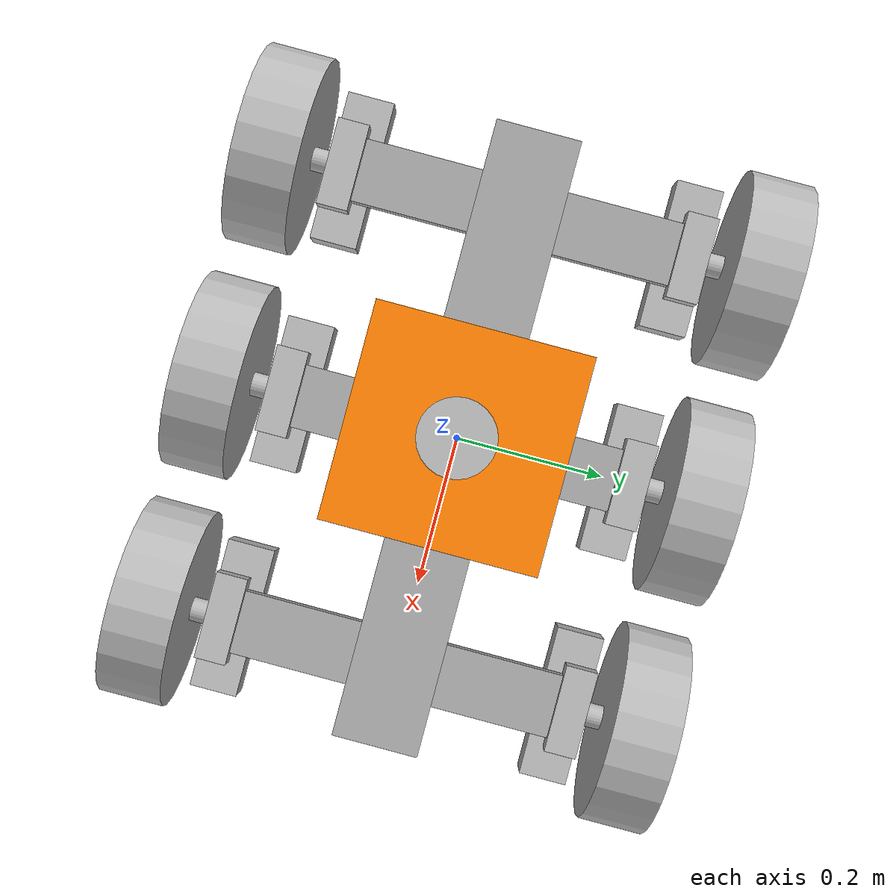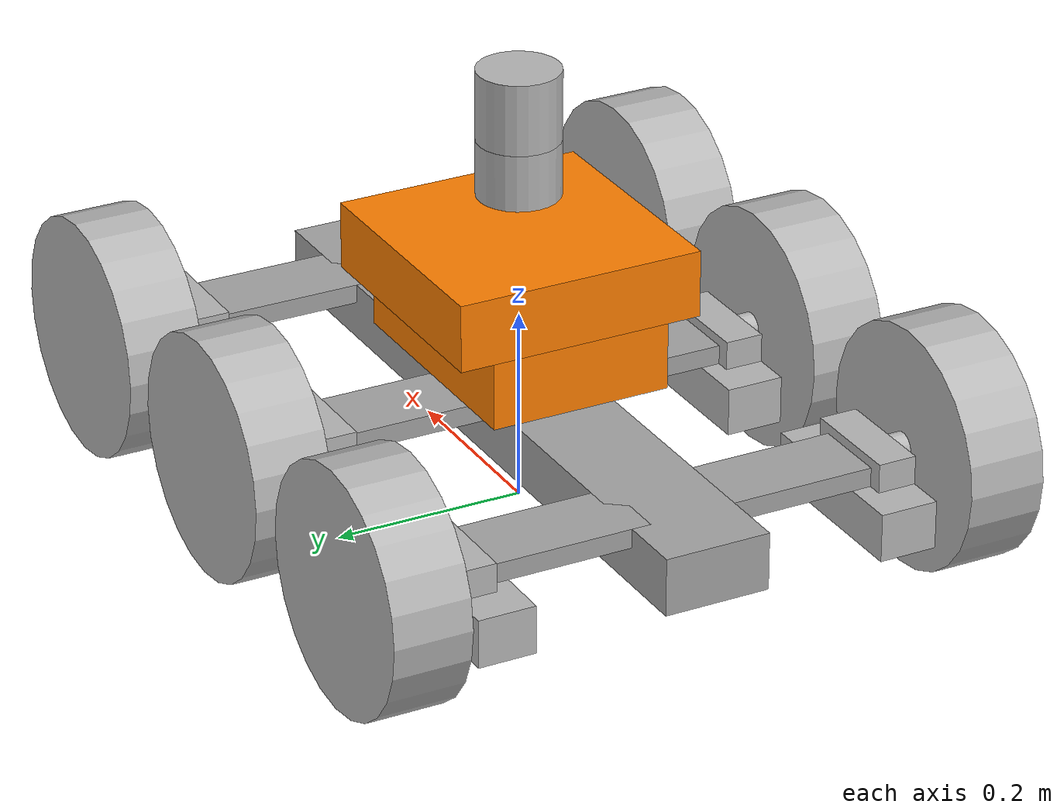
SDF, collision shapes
<?xml version='1.0'?>
 <sdf version='1.7'>
  <model name="siar">

  <odom_publish_frequency>1</odom_publish_frequency>
  <topic>cmd_vel</topic>

<!-- DEFINITION OF LINKS -->

<!-- 1. Definition of Chassis-->

    <link name='chassis'>
      <plugin filename="ignition-gazebo-imu-system"
        name="ignition::gazebo::systems::Imu">
      </plugin>
      <pose>0 0.0 .105 0 0 0</pose>
      <inertial>
        <mass>4.0</mass>
        <inertia>
          <ixx>0.005233</ixx>
          <ixy>0</ixy>
          <ixz>0</ixz>
          <iyy>0.2124</iyy>
          <iyz>0</iyz>
          <izz>0.2152</izz>
        </inertia>
      </inertial>
      <collision name='collision'>
        <geometry>
          <box>
            <size>.796 .11 .06</size>
          </box>
        </geometry>
      </collision>
      <visual name='visual'>
        <geometry>
          <box>
            <size>.796 .11 .06</size>
          </box>
        </geometry>
        <material>
          <ambient>0.7 0.7 0.7 1</ambient>      <!-- Clear gray-->
          <diffuse>0.65 0.65 0.65 1</diffuse>      <!-- Clear gray -->
          <specular>0.6 0.6 0.6 1</specular>    <!-- Clear gray -->
          <emissive>0 0 0 1</emissive>          <!-- Does not emit light -->
        </material>
      </visual>
    </link>

<!-- 2. Definition of Arms -->
    <link name='arm_right_1'>
      <pose>.0 .12 .125 0 0 0</pose>
      <inertial>
        <mass>1.0</mass>
        <inertia>
          <ixx>0.00244</ixx>
          <ixy>0</ixy>
          <ixz>0</ixz>
          <iyy>0.00057</iyy>
          <iyz>0</iyz>
          <izz>0.00294</izz>
        </inertia>
      </inertial>
      <collision name='collision'>
        <geometry>
          <box>
            <size>.08 .17 .02</size>
          </box>
        </geometry>
      </collision>
      <visual name='visual'>
        <geometry>
          <box>
            <size>.08 .17 .02</size>
          </box>
        </geometry>
        <material>
          <ambient>0.7 0.7 0.7 1</ambient>      <!-- Clear gray-->
          <diffuse>0.65 0.65 0.65 1</diffuse>      <!-- Clear gray -->
          <specular>0.6 0.6 0.6 1</specular>    <!-- Clear gray -->
          <emissive>0 0 0 1</emissive>          <!-- Does not emit light -->
        </material>
      </visual>
     </link>

     <link name='arm_right_2'>
      <pose>.292 .12 .125 0 0 0</pose>
      <inertial>
        <mass>1.0</mass>
        <inertia>
          <ixx>0.00244</ixx>
          <ixy>0</ixy>
          <ixz>0</ixz>
          <iyy>0.00057</iyy>
          <iyz>0</iyz>
          <izz>0.00294</izz>
        </inertia>
      </inertial>
      <collision name='collision'>
        <geometry>
          <box>
            <size>.08 .17 .02</size>
          </box>
        </geometry>
      </collision>
      <visual name='visual'>
        <geometry>
          <box>
            <size>.08 .17 .02</size>
          </box>
        </geometry>
        <material>
          <ambient>0.7 0.7 0.7 1</ambient>      <!-- Clear gray-->
          <diffuse>0.65 0.65 0.65 1</diffuse>      <!-- Clear gray -->
          <specular>0.6 0.6 0.6 1</specular>    <!-- Clear gray -->
          <emissive>0 0 0 1</emissive>          <!-- Does not emit light -->
        </material>
      </visual>
     </link>

     <link name='arm_right_3'>
      <pose>-.292 .12 .125 0 0 0</pose>
      <inertial>
        <mass>1.0</mass>
        <inertia>
          <ixx>0.00244</ixx>
          <ixy>0</ixy>
          <ixz>0</ixz>
          <iyy>0.00057</iyy>
          <iyz>0</iyz>
          <izz>0.00294</izz>
        </inertia>
      </inertial>
      <collision name='collision'>
        <geometry>
          <box>
            <size>.08 .17 .02</size>
          </box>
        </geometry>
      </collision>
      <visual name='visual'>
        <geometry>
          <box>
            <size>.08 .17 .02</size>
          </box>
        </geometry>
        <material>
          <ambient>0.7 0.7 0.7 1</ambient>      <!-- Clear gray-->
          <diffuse>0.65 0.65 0.65 1</diffuse>      <!-- Clear gray -->
          <specular>0.6 0.6 0.6 1</specular>    <!-- Clear gray -->
          <emissive>0 0 0 1</emissive>          <!-- Does not emit light -->
        </material>
      </visual>
     </link>

    <link name='arm_left_1'>
       <pose>.0 -.12 .125 0 0 0</pose>
       <inertial>
        <mass>1.0</mass>
        <inertia>
          <ixx>0.00244</ixx>
          <ixy>0</ixy>
          <ixz>0</ixz>
          <iyy>0.00057</iyy>
          <iyz>0</iyz>
          <izz>0.00294</izz>
        </inertia>
      </inertial>
       <collision name='collision'>
        <geometry>
          <box>
            <size>.08 .17 .02</size>
          </box>
        </geometry>
      </collision>
      <visual name='visual'>
        <geometry>
          <box>
            <size>.08 .17 .02</size>
          </box>
        </geometry>
        <material>
          <ambient>0.7 0.7 0.7 1</ambient>      <!-- Clear gray-->
          <diffuse>0.65 0.65 0.65 1</diffuse>      <!-- Clear gray -->
          <specular>0.6 0.6 0.6 1</specular>    <!-- Clear gray -->
          <emissive>0 0 0 1</emissive>          <!-- Does not emit light -->
        </material>
      </visual>
    </link>

    <link name='arm_left_2'>
      <pose>.292 -.12 .125 0 0 0</pose>
      <inertial>
        <mass>1.0</mass>
        <inertia>
          <ixx>0.00244</ixx>
          <ixy>0</ixy>
          <ixz>0</ixz>
          <iyy>0.00057</iyy>
          <iyz>0</iyz>
          <izz>0.00294</izz>
        </inertia>
      </inertial>
      <collision name='collision'>
        <geometry>
          <box>
            <size>.08 .17 .02</size>
          </box>
        </geometry>
      </collision>
      <visual name='visual'>
        <geometry>
          <box>
            <size>.08 .17 .02</size>
          </box>
        </geometry>
        <material>
          <ambient>0.7 0.7 0.7 1</ambient>      <!-- Clear gray-->
          <diffuse>0.65 0.65 0.65 1</diffuse>      <!-- Clear gray -->
          <specular>0.6 0.6 0.6 1</specular>    <!-- Clear gray -->
          <emissive>0 0 0 1</emissive>          <!-- Does not emit light -->
        </material>
      </visual>
    </link>

  <link name='arm_left_3'>
      <pose>-.292 -.12 .125 0 0 0</pose>
      <inertial>
        <mass>1.0</mass>
        <inertia>
          <ixx>0.00244</ixx>
          <ixy>0</ixy>
          <ixz>0</ixz>
          <iyy>0.00057</iyy>
          <iyz>0</iyz>
          <izz>0.00294</izz>
        </inertia>
      </inertial>
      <collision name='collision'>
        <geometry>
          <box>
            <size>.08 .17 .02</size>
          </box>
        </geometry>
      </collision>
      <visual name='visual'>
        <geometry>
          <box>
            <size>.08 .17 .02</size>
          </box>
        </geometry>
        <material>
          <ambient>0.7 0.7 0.7 1</ambient>      <!-- Clear gray-->
          <diffuse>0.65 0.65 0.65 1</diffuse>      <!-- Clear gray -->
          <specular>0.6 0.6 0.6 1</specular>    <!-- Clear gray -->
          <emissive>0 0 0 1</emissive>          <!-- Does not emit light -->
        </material>
      </visual>
   </link>

    <joint type="revolute" name="hinge_arm_right_1">
      <pose>0 -.075 -0.01 0 0 0</pose>
      <child>arm_right_1</child>
      <parent>chassis</parent>
      <axis>
        <limit>
          <lower>-0.7</lower>
          <upper>0.7</upper>
          <effort>1e6</effort>
        </limit>
        <xyz>0 0 1</xyz>
        <dynamics>
          <spring_reference>0</spring_reference>
          <spring_stiffness>0</spring_stiffness>
          <damping>1.0</damping>
          <friction>1.0</friction>
        </dynamics>
      </axis>
    </joint>
    <joint type="revolute" name="hinge_arm_right_2">
      <pose>0 -.075 -0.01 0 0 0</pose>
      <child>arm_right_2</child>
      <parent>chassis</parent>
      <axis>
        <limit>
          <lower>-0.7</lower>
          <upper>0.7</upper>
          <effort>1e6</effort>
        </limit>
        <xyz>0 0 1</xyz>
        <dynamics>
          <spring_reference>0</spring_reference>
          <spring_stiffness>0</spring_stiffness>
          <damping>1.0</damping>
          <friction>1.0</friction>
        </dynamics>
      </axis>
    </joint>
    <joint type="revolute" name="hinge_arm_right_3">
      <pose>0 -.075 -0.01 0 0 0</pose>
      <child>arm_right_3</child>
      <parent>chassis</parent>
      <axis>
        <limit>
          <lower>-0.7</lower>
          <upper>0.7</upper>
          <effort>1e6</effort>
        </limit>
        <xyz>0 0 1</xyz>
        <dynamics>
          <spring_reference>0</spring_reference>
          <spring_stiffness>0</spring_stiffness>
          <damping>1.0</damping>
          <friction>1.0</friction>
        </dynamics>
      </axis>
    </joint>
    <joint type="revolute" name="hinge_arm_left_1">
      <pose>0 .075 -0.01 0 0 0</pose>
      <child>arm_left_1</child>
      <parent>chassis</parent>
      <axis>
        <limit>
          <lower>-0.7</lower>
          <upper>0.7</upper>
          <effort>1e6</effort>
        </limit>
        <xyz>0 0 1</xyz>
        <dynamics>
          <spring_reference>0</spring_reference>
          <spring_stiffness>0</spring_stiffness>
          <damping>1.0</damping>
          <friction>1.0</friction>
        </dynamics>
      </axis>
    </joint>
    <joint type="revolute" name="hinge_arm_left_2">
      <pose>0 .075 -0.01 0 0 0</pose>
      <child>arm_left_2</child>
      <parent>chassis</parent>
      <axis>
        <limit>
          <lower>-0.7</lower>
          <upper>0.7</upper>
        </limit>
        <xyz>0 0 1</xyz>
        <dynamics>
          <spring_reference>0</spring_reference>
          <spring_stiffness>0</spring_stiffness>
          <damping>1.0</damping>
          <friction>1.0</friction>
        </dynamics>
      </axis>
    </joint>
    <joint type="revolute" name="hinge_arm_left_3">
      <pose>0 .075 -0.01 0 0 0</pose>
      <child>arm_left_3</child>
      <parent>chassis</parent>
      <axis>
        <limit>
          <lower>-0.7</lower>
          <upper>0.7</upper>
        </limit>
        <xyz>0 0 1</xyz>
        <dynamics>
          <spring_reference>0</spring_reference>
          <spring_stiffness>0</spring_stiffness>
          <damping>1.0</damping>
          <friction>1.0</friction>
        </dynamics>
      </axis>
    </joint>

<!-- 4. Box of battery and electronic and Handle to Cameras  -->

   <link name="box_battery">
      <inertial>
        <pose>.0 .0 .26 0 0 0</pose>
        <mass>14.0</mass>
        <inertia>
          <ixx>0.1252</ixx>
          <ixy>0</ixy>
          <ixz>0</ixz>
          <iyy>0.1252</iyy>
          <iyz>0</iyz>
          <izz>0.1577</izz>
        </inertia>
      </inertial>
      <collision name='collision_1'>
        <pose>.0 .0 .26 0 0 0</pose>
        <geometry>
          <box>
            <size>.26 .26 .07</size>
          </box>
        </geometry>
      </collision>
      <visual name='visual_1'>
      <pose>.0 .0 .26 0 0 0</pose>
        <geometry>
          <box>
            <size>.26 .26 .07</size>
          </box>
        </geometry>
        <material>
          <ambient>1 0.5 0 1</ambient>      <!-- Orange ambient color -->
          <diffuse>1 0.5 0 1</diffuse>      <!-- Orange diffuse color -->
          <specular>1 0.5 0 1</specular>    <!-- Orange specular color -->
          <emissive>0 0 0 1</emissive>      <!-- No emissive color -->
        </material>
      </visual>
      <collision name='collision_2'>
      <pose>.0 .0 .19 0 0 0</pose>
        <geometry>
          <box>
            <size>.26 .19 .07</size>
          </box>
        </geometry>
      </collision>
      <visual name='visual_2'>
      <pose>.0 .0 .19 0 0 0</pose>
        <geometry>
          <box>
            <size>.26 .19 .07</size>
          </box>
        </geometry>
        <material>
          <ambient>1 0.5 0 1</ambient>      <!-- Orange ambient color -->
          <diffuse>1 0.5 0 1</diffuse>      <!-- Orange diffuse color -->
          <specular>1 0.5 0 1</specular>    <!-- Orange specular color -->
          <emissive>0 0 0 1</emissive>      <!-- No emissive color -->
        </material>
      </visual>
      <visual name='visual_3'>
      <pose>.0 .0 .2975 0 0 0</pose>
        <geometry>
          <box>
            <size>.30 .30 .005</size>
          </box>
        </geometry>
        <material>
          <ambient>0 0 0 1</ambient>      <!-- Black ambient color -->
          <diffuse>0 0 0 1</diffuse>      <!-- Black diffuse color -->
          <specular>0 0 0 1</specular>    <!-- Black specular color -->
          <emissive>0 0 0 1</emissive>    <!-- No emissive color (black) -->
        </material>
      </visual>
      <visual name='visual_4'>
      <pose>.0 .0 .3005 0 0 0</pose>
        <geometry>
          <box>
            <size>.28 .28 .001</size>
          </box>
        </geometry>
        <material>
          <material>
          <ambient>0.35 0.35 .35 1</ambient>      <!-- DarkGray color-->
          <diffuse>0.3 0.3 0.3 1</diffuse>      <!-- DarkGray color -->
          <specular>0.3 0.3 0.3 1</specular>    <!-- DarkGray color -->
          <emissive>0 0 0 1</emissive>          <!-- Does not emit light -->
        </material>
        </material>
      </visual>
      <sensor name="imu_sensor" type="imu">
        <always_on>true</always_on>
        <update_rate>100</update_rate>
        <visualize>true</visualize>
        <topic>imu_siar_topic</topic>
        <pose>0 0 0 0 0 0</pose>
      </sensor>
   </link>

    <joint type="fixed" name="joint_box_1">
      <pose>0 0 0 0 0 0</pose>
      <child>chassis</child>
      <parent>box_battery</parent>
    </joint>

<!-- 5. Definition of couplings between Joint-Wheel -->

   <link name="coupling_right_1">
      <inertial>
        <pose>.0 .215 .09 0 0 0</pose>
        <mass>0.5</mass>
        <inertia>
          <ixx>0.000333</ixx>
          <ixy>0</ixy>
          <ixz>0</ixz>
          <iyy>0.000771</iyy>
          <iyz>0</iyz>
          <izz>0.000571</izz>
        </inertia>
      </inertial>
      <collision name='collision_1'>
      <pose>.0 .215 .09 0 0 0</pose>
        <geometry>
          <box>
            <size>.19 .06 .05</size>
          </box>
        </geometry>
      </collision>
      <visual name='visual_1'>
      <pose>.0 .215 .09 0 0 0</pose>
        <geometry>
          <box>
            <size>.19 .06 .05</size>
          </box>
        </geometry>
        <material>
          <material>
          <ambient>0.35 0.35 .35 1</ambient>      <!-- DarkGray color-->
          <diffuse>0.3 0.3 0.3 1</diffuse>      <!-- DarkGray color -->
          <specular>0.3 0.3 0.3 1</specular>    <!-- DarkGray color -->
          <emissive>0 0 0 1</emissive>          <!-- Does not emit light -->
        </material>
        </material>
      </visual>
      <collision name='collision_2'>
      <pose>.0 .225 .13 0 0 0</pose>
        <geometry>
          <box>
            <size>.11 .04 .03</size>
          </box>
        </geometry>
      </collision>
      <visual name='visual_2'>
      <pose>.0 .225 .13 0 0 0</pose>
        <geometry>
          <box>
            <size>.11 .04 .03</size>
          </box>
        </geometry>
        <material>
          <material>
          <ambient>0.35 0.35 .35 1</ambient>      <!-- DarkGray color-->
          <diffuse>0.3 0.3 0.3 1</diffuse>      <!-- DarkGray color -->
          <specular>0.3 0.3 0.3 1</specular>    <!-- DarkGray color -->
          <emissive>0 0 0 1</emissive>          <!-- Does not emit light -->
        </material>
        </material>
      </visual>
   </link>

   <link name="coupling_right_2">
      <inertial>
        <pose>.292 .215 .09 0 0 0</pose>
        <mass>0.5</mass>
        <inertia>
          <ixx>0.000333</ixx>
          <ixy>0</ixy>
          <ixz>0</ixz>
          <iyy>0.000771</iyy>
          <iyz>0</iyz>
          <izz>0.000571</izz>
        </inertia>
      </inertial>
      <collision name='collision_1'>
      <pose>.292 .215 .09 0 0 0</pose>
        <geometry>
          <box>
            <size>.19 .06 .05</size>
          </box>
        </geometry>
      </collision>
      <visual name='visual_1'>
      <pose>.292 .215 .09 0 0 0</pose>
        <geometry>
          <box>
            <size>.19 .06 .05</size>
          </box>
        </geometry>
        <material>
          <material>
          <ambient>0.35 0.35 .35 1</ambient>      <!-- DarkGray color-->
          <diffuse>0.3 0.3 0.3 1</diffuse>      <!-- DarkGray color -->
          <specular>0.3 0.3 0.3 1</specular>    <!-- DarkGray color -->
          <emissive>0 0 0 1</emissive>          <!-- Does not emit light -->
        </material>
        </material>
      </visual>
      <collision name='collision_2'>
      <pose>.292 .225 .13 0 0 0</pose>
        <geometry>
          <box>
            <size>.11 .04 .03</size>
          </box>
        </geometry>
      </collision>
      <visual name='visual_2'>
      <pose>.292 .225 .13 0 0 0</pose>
        <geometry>
          <box>
            <size>.11 .04 .03</size>
          </box>
        </geometry>
        <material>
          <material>
          <ambient>0.35 0.35 .35 1</ambient>      <!-- DarkGray color-->
          <diffuse>0.3 0.3 0.3 1</diffuse>      <!-- DarkGray color -->
          <specular>0.3 0.3 0.3 1</specular>    <!-- DarkGray color -->
          <emissive>0 0 0 1</emissive>          <!-- Does not emit light -->
        </material>
        </material>
      </visual>
   </link>

   <link name="coupling_right_3">
      <inertial>
        <pose>-.292 .215 .09 0 0 0</pose>
        <mass>0.5</mass>
        <inertia>
          <ixx>0.000333</ixx>
          <ixy>0</ixy>
          <ixz>0</ixz>
          <iyy>0.000771</iyy>
          <iyz>0</iyz>
          <izz>0.000571</izz>
        </inertia>
      </inertial>
      <collision name='collision_1'>
      <pose>-.292 .215 .09 0 0 0</pose>
        <geometry>
          <box>
            <size>.19 .06 .05</size>
          </box>
        </geometry>
      </collision>
      <visual name='visual_1'>
      <pose>-.292 .215 .09 0 0 0</pose>
        <geometry>
          <box>
            <size>.19 .06 .05</size>
          </box>
        </geometry>
        <material>
          <material>
          <ambient>0.35 0.35 .35 1</ambient>      <!-- DarkGray color-->
          <diffuse>0.3 0.3 0.3 1</diffuse>      <!-- DarkGray color -->
          <specular>0.3 0.3 0.3 1</specular>    <!-- DarkGray color -->
          <emissive>0 0 0 1</emissive>          <!-- Does not emit light -->
        </material>
        </material>
      </visual>
      <collision name='collision_2'>
      <pose>-.292 .225 .13 0 0 0</pose>
        <geometry>
          <box>
            <size>.11 .04 .03</size>
          </box>
        </geometry>
      </collision>
      <visual name='visual_2'>
      <pose>-.292 .225 .13 0 0 0</pose>
        <geometry>
          <box>
            <size>.11 .04 .03</size>
          </box>
        </geometry>
        <material>
          <material>
          <ambient>0.35 0.35 .35 1</ambient>      <!-- DarkGray color-->
          <diffuse>0.3 0.3 0.3 1</diffuse>      <!-- DarkGray color -->
          <specular>0.3 0.3 0.3 1</specular>    <!-- DarkGray color -->
          <emissive>0 0 0 1</emissive>          <!-- Does not emit light -->
        </material>
        </material>
      </visual>
   </link>

   <link name="coupling_left_1">
      <inertial>
        <pose>.0 -.215 .09 0 0 0</pose>
        <mass>0.5</mass>
        <inertia>
          <ixx>0.000333</ixx>
          <ixy>0</ixy>
          <ixz>0</ixz>
          <iyy>0.000771</iyy>
          <iyz>0</iyz>
          <izz>0.000571</izz>
        </inertia>
      </inertial>
      <collision name='collision_1'>
      <pose>.0 -.215 .09 0 0 0</pose>
        <geometry>
          <box>
            <size>.19 .06 .05</size>
          </box>
        </geometry>
      </collision>
      <visual name='visual_1'>
      <pose>.0 -.215 .09 0 0 0</pose>
        <geometry>
          <box>
            <size>.19 .06 .05</size>
          </box>
        </geometry>
        <material>
          <material>
          <ambient>0.35 0.35 .35 1</ambient>      <!-- DarkGray color-->
          <diffuse>0.3 0.3 0.3 1</diffuse>      <!-- DarkGray color -->
          <specular>0.3 0.3 0.3 1</specular>    <!-- DarkGray color -->
          <emissive>0 0 0 1</emissive>          <!-- Does not emit light -->
        </material>
        </material>
      </visual>
      <collision name='collision_2'>
      <pose>.0 -.225 .13 0 0 0</pose>
        <geometry>
          <box>
            <size>.11 .04 .03</size>
          </box>
        </geometry>
      </collision>
      <visual name='visual_2'>
      <pose>.0 -.225 .13 0 0 0</pose>
        <geometry>
          <box>
            <size>.11 .04 .03</size>
          </box>
        </geometry>
        <material>
          <material>
          <ambient>0.35 0.35 .35 1</ambient>      <!-- DarkGray color-->
          <diffuse>0.3 0.3 0.3 1</diffuse>      <!-- DarkGray color -->
          <specular>0.3 0.3 0.3 1</specular>    <!-- DarkGray color -->
          <emissive>0 0 0 1</emissive>          <!-- Does not emit light -->
        </material>
        </material>
      </visual>
   </link>

   <link name="coupling_left_2">
      <inertial>
        <pose>.292 -.215 .09 0 0 0</pose>
        <mass>0.5</mass>
        <inertia>
          <ixx>0.000333</ixx>
          <ixy>0</ixy>
          <ixz>0</ixz>
          <iyy>0.000771</iyy>
          <iyz>0</iyz>
          <izz>0.000571</izz>
        </inertia>
      </inertial>
      <collision name='collision'>
      <pose>.292 -.215 .09 0 0 0</pose>
        <geometry>
          <box>
            <size>.19 .06 .05</size>
          </box>
        </geometry>
      </collision>
      <visual name='visual'>
      <pose>.292 -.215 .09 0 0 0</pose>
        <geometry>
          <box>
            <size>.19 .06 .05</size>
          </box>
        </geometry>
        <material>
          <material>
          <ambient>0.35 0.35 .35 1</ambient>      <!-- DarkGray color-->
          <diffuse>0.3 0.3 0.3 1</diffuse>      <!-- DarkGray color -->
          <specular>0.3 0.3 0.3 1</specular>    <!-- DarkGray color -->
          <emissive>0 0 0 1</emissive>          <!-- Does not emit light -->
        </material>
        </material>
      </visual>
      <collision name='collision_2'>
      <pose>.292 -.225 .13 0 0 0</pose>
        <geometry>
          <box>
            <size>.11 .04 .03</size>
          </box>
        </geometry>
      </collision>
      <visual name='visual_2'>
      <pose>.292 -.225 .13 0 0 0</pose>
        <geometry>
          <box>
            <size>.11 .04 .03</size>
          </box>
        </geometry>
        <material>
          <material>
          <ambient>0.35 0.35 .35 1</ambient>      <!-- DarkGray color-->
          <diffuse>0.3 0.3 0.3 1</diffuse>      <!-- DarkGray color -->
          <specular>0.3 0.3 0.3 1</specular>    <!-- DarkGray color -->
          <emissive>0 0 0 1</emissive>          <!-- Does not emit light -->
        </material>
        </material>
      </visual>
   </link>

   <link name="coupling_left_3">
      <inertial>
        <pose>-.292 -.215 .09 0 0 0</pose>
        <mass>0.5</mass>
        <inertia>
          <ixx>0.000333</ixx>
          <ixy>0</ixy>
          <ixz>0</ixz>
          <iyy>0.000771</iyy>
          <iyz>0</iyz>
          <izz>0.000571</izz>
        </inertia>
      </inertial>
      <collision name='collision_1'>
      <pose>-.292 -.215 .09 0 0 0</pose>
        <geometry>
          <box>
            <size>.19 .06 .05</size>
          </box>
        </geometry>
      </collision>
      <visual name='visual_1'>
      <pose>-.292 -.215 .09 0 0 0</pose>
        <geometry>
          <box>
            <size>.19 .06 .05</size>
          </box>
        </geometry>
        <material>
          <material>
          <ambient>0.35 0.35 .35 1</ambient>      <!-- DarkGray color-->
          <diffuse>0.3 0.3 0.3 1</diffuse>      <!-- DarkGray color -->
          <specular>0.3 0.3 0.3 1</specular>    <!-- DarkGray color -->
          <emissive>0 0 0 1</emissive>          <!-- Does not emit light -->
        </material>
        </material>
      </visual>
      <collision name='collision_2'>
      <pose>-.292 -.225 .13 0 0 0</pose>
        <geometry>
          <box>
            <size>.11 .04 .03</size>
          </box>
        </geometry>
      </collision>
      <visual name='visual_2'>
      <pose>-.292 -.225 .13 0 0 0</pose>
        <geometry>
          <box>
            <size>.11 .04 .03</size>
          </box>
        </geometry>
        <material>
          <material>
          <ambient>0.35 0.35 .35 1</ambient>      <!-- DarkGray color-->
          <diffuse>0.3 0.3 0.3 1</diffuse>      <!-- DarkGray color -->
          <specular>0.3 0.3 0.3 1</specular>    <!-- DarkGray color -->
          <emissive>0 0 0 1</emissive>          <!-- Does not emit light -->
        </material>
        </material>
      </visual>
   </link>

      <joint type="revolute" name="hinge_coupling_right_1">
        <pose>.0 .195 0.115 0 0 0</pose>
        <child>coupling_right_1</child>
        <parent>arm_right_1</parent>
        <axis>
        <limit>
          <lower>-0.7</lower>
          <upper>0.7</upper>
        </limit>
        <xyz>0 0 1</xyz>
        <dynamics>
          <spring_reference>0</spring_reference>
          <spring_stiffness>0</spring_stiffness>
          <damping>1.0</damping>
          <friction>0.9</friction>
        </dynamics>
      </axis>
      </joint>
      <joint type="revolute" name="hinge_coupling_right_2">
        <pose>.292 .195 0.115 0 0 0</pose>
        <child>coupling_right_2</child>
        <parent>arm_right_2</parent>
        <axis>
        <limit>
          <lower>-0.7</lower>
          <upper>0.7</upper>
        </limit>
        <xyz>0 0 1</xyz>
        <dynamics>
          <spring_reference>0</spring_reference>
          <spring_stiffness>0</spring_stiffness>
          <damping>1.0</damping>
          <friction>0.9</friction>
        </dynamics>
      </axis>
      </joint>
      <joint type="revolute" name="hinge_coupling_right_3">
        <pose>-.292 .195 0.115 0 0 0</pose>
        <child>coupling_right_3</child>
        <parent>arm_right_3</parent>
        <axis>
        <limit>
          <lower>-0.7</lower>
          <upper>0.7</upper>
        </limit>
        <xyz>0 0 1</xyz>
        <dynamics>
          <spring_reference>0</spring_reference>
          <spring_stiffness>0</spring_stiffness>
          <damping>1.0</damping>
          <friction>0.9</friction>
        </dynamics>
      </axis>
      </joint>

      <joint type="revolute" name="hinge_coupling_left_1">
      <pose>.0 -.195 0.115 0 0 0</pose>
      <child>coupling_left_1</child>
      <parent>arm_left_1</parent>
      <axis>
        <limit>
          <lower>-0.7</lower>
          <upper>0.7</upper>
        </limit>
        <xyz>0 0 1</xyz>
        <dynamics>
          <spring_reference>0</spring_reference>
          <spring_stiffness>0</spring_stiffness>
          <damping>1.0</damping>
          <friction>0.9</friction>
        </dynamics>
      </axis>
      </joint>
      <joint type="revolute" name="hinge_coupling_left_2">
      <pose>.292 -.195 0.115 0 0 0</pose>
      <child>coupling_left_2</child>
      <parent>arm_left_2</parent>
      <axis>
        <limit>
          <lower>-0.7</lower>
          <upper>0.7</upper>
        </limit>
        <xyz>0 0 1</xyz>
        <dynamics>
          <spring_reference>0</spring_reference>
          <spring_stiffness>0</spring_stiffness>
          <damping>1.0</damping>
          <friction>0.9</friction>
        </dynamics>
      </axis>
      </joint>
      <joint type="revolute" name="hinge_coupling_left_3">
      <pose>-.292 -.195 0.115 0 0 0</pose>
      <child>coupling_left_3</child>
      <parent>arm_left_3</parent>
      <axis>
        <limit>
          <lower>-0.7</lower>
          <upper>0.7</upper>
        </limit>
        <xyz>0 0 1</xyz>
        <dynamics>
          <spring_reference>0</spring_reference>
          <spring_stiffness>0</spring_stiffness>
          <damping>1.0</damping>
          <friction>0.9</friction>
        </dynamics>
      </axis>
      </joint>

<!-- 6. Definition of wheel axis -->
      <link name="axis_right_1">
        <pose>0 .255 .125 0 1.5707 1.5707</pose>
        <inertial>
          <mass>0.1</mass>
          <inertia>
            <ixx>0.00000667</ixx>
            <ixy>0</ixy>
            <ixz>0</ixz>
            <iyy>0.00000667</iyy>
            <iyz>0</iyz>
            <izz>0.00000667</izz>
          </inertia>
        </inertial>
        <collision name="collision">
          <geometry>
            <cylinder>
              <radius>.015</radius>
              <length>.02</length>
            </cylinder>
          </geometry>
        </collision>
        <visual name="visual">
          <geometry>
            <cylinder>
              <radius>.015</radius>
              <length>.02</length>
            </cylinder>
          </geometry>
        </visual>
      </link>
      <link name="axis_right_2">
        <pose>0.292 .255 .125 0 1.5707 1.5707</pose>
        <inertial>
          <mass>0.1</mass>
          <inertia>
            <ixx>0.00000667</ixx>
            <ixy>0</ixy>
            <ixz>0</ixz>
            <iyy>0.00000667</iyy>
            <iyz>0</iyz>
            <izz>0.00000667</izz>
          </inertia>
        </inertial>
        <collision name="collision">
          <geometry>
            <cylinder>
              <radius>.015</radius>
              <length>.02</length>
            </cylinder>
          </geometry>
        </collision>
        <visual name="visual">
          <geometry>
            <cylinder>
              <radius>.015</radius>
              <length>.02</length>
            </cylinder>
          </geometry>
        </visual>
      </link>
      <link name="axis_right_3">
        <pose>-0.292 .255 .125 0 1.5707 1.5707</pose>
        <inertial>
          <mass>0.1</mass>
          <inertia>
            <ixx>0.00000667</ixx>
            <ixy>0</ixy>
            <ixz>0</ixz>
            <iyy>0.00000667</iyy>
            <iyz>0</iyz>
            <izz>0.00000667</izz>
          </inertia>
        </inertial>
        <collision name="collision">
          <geometry>
            <cylinder>
              <radius>.015</radius>
              <length>.02</length>
            </cylinder>
          </geometry>
        </collision>
        <visual name="visual">
          <geometry>
            <cylinder>
              <radius>.015</radius>
              <length>.02</length>
            </cylinder>
          </geometry>
        </visual>
      </link>

      <link name="axis_left_1">
        <pose>0 -.255 .125 0 1.5707 1.5707</pose>
        <inertial>
          <mass>0.1</mass>
          <inertia>
            <ixx>0.00000667</ixx>
            <ixy>0</ixy>
            <ixz>0</ixz>
            <iyy>0.00000667</iyy>
            <iyz>0</iyz>
            <izz>0.00000667</izz>
          </inertia>
        </inertial>
        <collision name="collision">
          <geometry>
            <cylinder>
              <radius>.015</radius>
              <length>.02</length>
            </cylinder>
          </geometry>
        </collision>
        <visual name="visual">
          <geometry>
            <cylinder>
              <radius>.015</radius>
              <length>.02</length>
            </cylinder>
          </geometry>
        </visual>
      </link>
      <link name="axis_left_2">
        <pose>0.292 -.255 .125 0 1.5707 1.5707</pose>
        <inertial>
          <mass>0.1</mass>
          <inertia>
            <ixx>0.00000667</ixx>
            <ixy>0</ixy>
            <ixz>0</ixz>
            <iyy>0.00000667</iyy>
            <iyz>0</iyz>
            <izz>0.00000667</izz>
          </inertia>
        </inertial>
        <collision name="collision">
          <geometry>
            <cylinder>
              <radius>.015</radius>
              <length>.02</length>
            </cylinder>
          </geometry>
        </collision>
        <visual name="visual">
          <geometry>
            <cylinder>
              <radius>.015</radius>
              <length>.02</length>
            </cylinder>
          </geometry>
        </visual>
      </link>
      <link name="axis_left_3">
        <pose>-0.292 -.255 .125 0 1.5707 1.5707</pose>
        <inertial>
          <mass>0.1</mass>
          <inertia>
            <ixx>0.00000667</ixx>
            <ixy>0</ixy>
            <ixz>0</ixz>
            <iyy>0.00000667</iyy>
            <iyz>0</iyz>
            <izz>0.00000667</izz>
          </inertia>
        </inertial>
        <collision name="collision">
          <geometry>
            <cylinder>
              <radius>.015</radius>
              <length>.02</length>
            </cylinder>
          </geometry>
        </collision>
        <visual name="visual">
          <geometry>
            <cylinder>
              <radius>.015</radius>
              <length>.02</length>
            </cylinder>
          </geometry>
        </visual>
      </link>

   <joint type="revolute" name="move_axis_wheel_right_1">
      <pose>0 0 -0.01 0 0 0</pose>
      <child>axis_right_1</child>
      <parent>coupling_right_1</parent>
      <axis>
        <xyz>0 0 1</xyz>
      </axis>
    </joint>
    <joint type="revolute" name="move_axis_wheel_right_2">
      <pose>0 0 -0.01 0 0 0</pose>
      <child>axis_right_2</child>
      <parent>coupling_right_2</parent>
      <axis>
        <xyz>0 0 1</xyz>
      </axis>
    </joint>
    <joint type="revolute" name="move_axis_wheel_right_3">
      <pose>0 0 -0.01 0 0 0</pose>
      <child>axis_right_3</child>
      <parent>coupling_right_3</parent>
      <axis>
        <xyz>0 0 1</xyz>
      </axis>
    </joint>

    <joint type="revolute" name="move_axis_wheel_left_1">
      <pose>0 0 0.01 0 0 0</pose>
      <child>axis_left_1</child>
      <parent>coupling_left_1</parent>
      <axis>
        <xyz>0 0 1</xyz>
      </axis>
    </joint>
    <joint type="revolute" name="move_axis_wheel_left_2">
      <pose>0 0 0.01 0 0 0</pose>
      <child>axis_left_2</child>
      <parent>coupling_left_2</parent>
      <axis>
        <xyz>0 0 1</xyz>
      </axis>
    </joint>
    <joint type="revolute" name="move_axis_wheel_left_3">
      <pose>0 0 0.01 0 0 0</pose>
      <child>axis_left_3</child>
      <parent>coupling_left_3</parent>
      <axis>
        <xyz>0 0 1</xyz>
      </axis>
    </joint>

<!-- 7. Definition of wheels -->
    <link name="wheel_right_1">
      <pose>.0 .305 .125 1.5707 0 0</pose>
      <inertial>
          <mass>0.6</mass>
          <inertia>
            <ixx>0.003445</ixx>
            <ixy>0</ixy>
            <ixz>0</ixz>
            <iyy>0.003445</iyy>
            <iyz>0</iyz>
            <izz>0.00625</izz>
          </inertia>
      </inertial>
      <collision name="collision">
        <surface>
         <friction>
         </friction>
        </surface>
        <geometry>
          <cylinder>
            <radius>.125</radius>
            <length>.08</length>
          </cylinder>
        </geometry>
      </collision>
    <visual name='visual'>
      <geometry>
        <mesh>
          <uri>model://siar/parts/wheels/mesh/wheel.dae</uri>
        </mesh>
      </geometry>
    </visual>
    </link>

    <link name="wheel_right_2">
      <pose>.292 .305 .125 1.5707 0 0</pose>
      <inertial>
          <mass>0.6</mass>
          <inertia>
            <ixx>0.003445</ixx>
            <ixy>0</ixy>
            <ixz>0</ixz>
            <iyy>0.003445</iyy>
            <iyz>0</iyz>
            <izz>0.00625</izz>
          </inertia>
      </inertial>
      <collision name="collision">
        <surface>
         <friction>
         </friction>
        </surface>
        <geometry>
          <cylinder>
            <radius>.125</radius>
            <length>.08</length>
          </cylinder>
        </geometry>
      </collision>
    <visual name='visual'>
      <geometry>
        <mesh>
          <uri>model://siar/parts/wheels/mesh/wheel.dae</uri>
        </mesh>
      </geometry>
    </visual>
    </link>

    <link name="wheel_right_3">
      <pose>-.292 .305 .125 1.5707 0 0</pose>
      <inertial>
          <mass>0.6</mass>
          <inertia>
            <ixx>0.003445</ixx>
            <ixy>0</ixy>
            <ixz>0</ixz>
            <iyy>0.003445</iyy>
            <iyz>0</iyz>
            <izz>0.00625</izz>
          </inertia>
      </inertial>
      <collision name="collision">
        <surface>
         <friction>
         </friction>
        </surface>
        <geometry>
          <cylinder>
            <radius>.125</radius>
            <length>.08</length>
          </cylinder>
        </geometry>
      </collision>
    <visual name='visual'>
      <geometry>
        <mesh>
          <uri>model://siar/parts/wheels/mesh/wheel.dae</uri>
        </mesh>
      </geometry>
    </visual>
    </link>

    <link name="wheel_left_1">
      <pose>.0 -.305 .125 -1.5707 0 0</pose>
      <inertial>
          <mass>0.6</mass>
          <inertia>
            <ixx>0.003445</ixx>
            <ixy>0</ixy>
            <ixz>0</ixz>
            <iyy>0.003445</iyy>
            <iyz>0</iyz>
            <izz>0.00625</izz>
          </inertia>
      </inertial>
      <collision name="collision">
        <surface>
         <friction>
         </friction>
        </surface>
        <geometry>
          <cylinder>
            <radius>.125</radius>
            <length>.08</length>
          </cylinder>
        </geometry>
      </collision>
    <visual name='visual'>
      <geometry>
        <mesh>
          <uri>model://siar/parts/wheels/mesh/wheel.dae</uri>
        </mesh>
      </geometry>
    </visual>
    </link>

    <link name="wheel_left_2">
      <pose>.292 -.305 .125 -1.5707 0 0</pose>
      <inertial>
          <mass>0.6</mass>
          <inertia>
            <ixx>0.003445</ixx>
            <ixy>0</ixy>
            <ixz>0</ixz>
            <iyy>0.003445</iyy>
            <iyz>0</iyz>
            <izz>0.00625</izz>
          </inertia>
      </inertial>
      <collision name="collision">
        <surface>
         <friction>
         </friction>
        </surface>
        <geometry>
          <cylinder>
            <radius>.125</radius>
            <length>.08</length>
          </cylinder>
        </geometry>
      </collision>
    <visual name='visual'>
      <geometry>
        <mesh>
          <uri>model://siar/parts/wheels/mesh/wheel.dae</uri>
        </mesh>
      </geometry>
    </visual>
    </link>

    <link name="wheel_left_3">
      <pose>-.292 -.305 .125 -1.5707 0 0</pose>
      <inertial>
          <mass>0.6</mass>
          <inertia>
            <ixx>0.003445</ixx>
            <ixy>0</ixy>
            <ixz>0</ixz>
            <iyy>0.003445</iyy>
            <iyz>0</iyz>
            <izz>0.00625</izz>
          </inertia>
      </inertial>
      <collision name="collision">
	    <surface>
         <friction>
         </friction>
        </surface>
        <geometry>
          <cylinder>
            <radius>.125</radius>
            <length>.08</length>
          </cylinder>
        </geometry>
      </collision>
    <visual name='visual'>
      <geometry>
        <mesh>
          <uri>model://siar/parts/wheels/mesh/wheel.dae</uri>
        </mesh>
      </geometry>
    </visual>
    </link>

    <joint type="fixed" name="fix_wheel_axis_right_1">
      <pose>0 0 -.04 0 0 0</pose>
      <child>wheel_right_1</child>
      <parent>axis_right_1</parent>
    </joint>
    <joint type="fixed" name="fix_wheel_axis_right_2">
      <pose>0 0 -.04 0 0 0</pose>
      <child>wheel_right_2</child>
      <parent>axis_right_2</parent>
    </joint>
    <joint type="fixed" name="fix_wheel_axis_right_3">
      <pose>0 0 -.04 0 0 0</pose>
      <child>wheel_right_3</child>
      <parent>axis_right_3</parent>
    </joint>
    <joint type="fixed" name="fix_wheel_axis_left_1">
      <pose>0 0 .04 0 0 0</pose>
      <child>wheel_left_1</child>
      <parent>axis_left_1</parent>
    </joint>
    <joint type="fixed" name="fix_wheel_axis_left_2">
      <pose>0 0 .04 0 0 0</pose>
      <child>wheel_left_2</child>
      <parent>axis_left_2</parent>
    </joint>
    <joint type="fixed" name="fix_wheel_axis_left_3">
      <pose>0 0 .04 0 0 0</pose>
      <child>wheel_left_3</child>
      <parent>axis_left_3</parent>
    </joint>

<!-- 10.   Definition of Sensors and Actuators -->

    <link name="velodyne_base">
      <pose>0 0 0.3601 0 0 0</pose>
      <inertial>
          <mass>1.0</mass>
          <inertia>
            <ixx>0.001058</ixx>
            <ixy>0</ixy>
            <ixz>0</ixz>
            <iyy>0.001058</iyy>
            <iyz>0</iyz>
            <izz>0.001214</izz>
          </inertia>
      </inertial>
      <collision name="base_collision">
        <geometry>
          <cylinder>
            <radius>.04267</radius>
            <length>.05867</length>
          </cylinder>
        </geometry>
      </collision>
      <visual name="base_visual">
        <pose>0 0 -0.029335 0 0 0</pose>
        <geometry>
          <mesh>
            <uri>model://siar/sensors/velodyne_hdl32/meshes/velodyne_base.dae</uri>
          </mesh>
        </geometry>
      </visual>
    </link>

    <link name="velodyne_top">
      <pose>0 0 0.4262 0 0 0</pose>
      <inertial>
          <mass>0.6</mass>
          <inertia>
            <ixx>0.00063485</ixx>
            <ixy>0</ixy>
            <ixz>0</ixz>
            <iyy>0.00063485</iyy>
            <iyz>0</iyz>
            <izz>0.0007283</izz>
          </inertia>
      </inertial>
      <collision name="top_collision">
        <geometry>
          <cylinder>
            <radius>0.04267</radius>
            <length>0.07357</length>
          </cylinder>
        </geometry>
      </collision>
      <visual name="top_visual">
        <pose>0 0 -0.0376785 0 0 1.5707</pose>
        <geometry>
          <mesh>
            <uri>model://siar/sensors/velodyne_hdl32/meshes/velodyne_top.dae</uri>
          </mesh>
        </geometry>
      </visual>
      <sensor type="ray" name="lase_scanr">
        <pose>0 0 -0.004645 0 0 0</pose>
        <visualize>false</visualize>
        <update_rate>15</update_rate>
        <ray>
          <scan>
            <horizontal>
              <samples>180</samples>
              <resolution>1</resolution>
              <min_angle>-1.57</min_angle>
              <max_angle>1.57</max_angle>
            </horizontal>
            <vertical>
              <samples>16</samples>
              <resolution>1</resolution>
              <min_angle>0</min_angle>
              <max_angle>0.3</max_angle>
            </vertical>
          </scan>
          <range>
            <min>0.1</min>
            <max>70</max>
            <resolution>0.02</resolution>
          </range>
          <noise>
            <type>gaussian</type>
            <mean>0.0</mean>
            <stddev>0.0</stddev>
          </noise>
        </ray>
      </sensor>
    </link>

    <joint type="fixed" name="joint">
      <pose>0 0 -0.036785 0 0 0</pose>
      <parent>velodyne_base</parent>
      <child>velodyne_top</child>
      <axis>
        <xyz>0 0 1</xyz>
        <limit>
          <lower>-10000000000000000</lower>
          <upper>10000000000000000</upper>
        </limit>
      </axis>
    </joint>

    <joint name='fixed_velodyne' type='fixed'>
      <child>velodyne_base</child>
      <parent>box_battery</parent>
      <pose> 0 0 0 0 0 0</pose>
    </joint>

        <!-- Track drive -->
      <plugin filename="ignition-gazebo-diff-drive-system" name="ignition::gazebo::systems::DiffDrive">
        <left_joint>move_axis_wheel_left_1</left_joint>
        <left_joint>move_axis_wheel_left_2 </left_joint>
        <left_joint>move_axis_wheel_left_3 </left_joint>
        <right_joint>move_axis_wheel_right_1</right_joint>
        <right_joint>move_axis_wheel_right_2</right_joint>
        <right_joint>move_axis_wheel_right_3</right_joint>
        <wheel_separation>0.42</wheel_separation>
        <wheel_radius>0.1015</wheel_radius>
        <odom_publish_frequency>100</odom_publish_frequency>
        <topic>siar/cmd_vel</topic> #Custom topic that this system will subscribe to in order to receive command velocity messages. This element if optional, and the default value is /model/{name_of_model}/cmd_vel.
        <odom_topic>siar/odometry</odom_topic>  Custom topic on which this system will publish odometry messages. This element if optional, and the default value is /model/{name_of_model}/odometry.
        <tf_topic>siar/tf_odom_to_baselink</tf_topic>
        <frame_id>siar/odom</frame_id>
        <child_frame_id>siar/base_link</child_frame_id>
      </plugin>

      <plugin filename="ignition-gazebo-joint-position-controller-system" name="ignition::gazebo::systems::JointPositionController">
        <joint_name>hinge_arm_right_1</joint_name>
        <topic>siar/arm_right_1_cmd</topic>
        <p_gain>1000</p_gain>
        <i_gain>100</i_gain>
        <d_gain>0.0</d_gain>
        <i_max>1</i_max>
        <i_min>-1</i_min>
        <cmd_max>1000</cmd_max>
        <cmd_min>-1000</cmd_min>
      </plugin>
      <plugin filename="ignition-gazebo-joint-position-controller-system" name="ignition::gazebo::systems::JointPositionController">
        <joint_name>hinge_arm_right_2</joint_name>
        <topic>siar/arm_right_2_cmd</topic>
        <p_gain>1000</p_gain>
        <i_gain>100</i_gain>
        <d_gain>0.0</d_gain>
        <i_max>1</i_max>
        <i_min>-1</i_min>
        <cmd_max>1000</cmd_max>
        <cmd_min>-1000</cmd_min>
      </plugin>
      <plugin filename="ignition-gazebo-joint-position-controller-system" name="ignition::gazebo::systems::JointPositionController">
        <joint_name>hinge_arm_right_3</joint_name>
        <topic>siar/arm_right_3_cmd</topic>
        <p_gain>1000</p_gain>
        <i_gain>100</i_gain>
        <d_gain>0.0</d_gain>
        <i_max>1</i_max>
        <i_min>-1</i_min>
        <cmd_max>1000</cmd_max>
        <cmd_min>-1000</cmd_min>
      </plugin>
      <plugin filename="ignition-gazebo-joint-position-controller-system" name="ignition::gazebo::systems::JointPositionController">
        <joint_name>hinge_arm_left_1</joint_name>
        <topic>siar/arm_left_1_cmd</topic>
        <p_gain>1000</p_gain>
        <i_gain>100</i_gain>
        <d_gain>0.0</d_gain>
        <i_max>1</i_max>
        <i_min>-1</i_min>
        <cmd_max>1000</cmd_max>
        <cmd_min>-1000</cmd_min>
      </plugin>
      <plugin filename="ignition-gazebo-joint-position-controller-system" name="ignition::gazebo::systems::JointPositionController">
        <joint_name>hinge_arm_left_2</joint_name>
        <topic>siar/arm_left_2_cmd</topic>
        <p_gain>1000</p_gain>
        <i_gain>100</i_gain>
        <d_gain>0.0</d_gain>
        <i_max>1</i_max>
        <i_min>-1</i_min>
        <cmd_max>1000</cmd_max>
        <cmd_min>-1000</cmd_min>
      </plugin>
      <plugin filename="ignition-gazebo-joint-position-controller-system" name="ignition::gazebo::systems::JointPositionController">
        <joint_name>hinge_arm_left_3</joint_name>
        <topic>siar/arm_left_3_cmd</topic>
        <p_gain>1000</p_gain>
        <i_gain>100</i_gain>
        <d_gain>0.0</d_gain>
        <i_max>1</i_max>
        <i_min>-1</i_min>
        <cmd_max>1000</cmd_max>
        <cmd_min>-1000</cmd_min>
      </plugin>

      <plugin filename="ignition-gazebo-joint-position-controller-system" name="ignition::gazebo::systems::JointPositionController">
        <joint_name>hinge_coupling_right_1</joint_name>
        <topic>siar/coupling_right_1_cmd</topic>
        <p_gain>1000</p_gain>
        <i_gain>100</i_gain>
        <d_gain>0.0</d_gain>
        <i_max>1</i_max>
        <i_min>-1</i_min>
        <cmd_max>1000</cmd_max>
        <cmd_min>-1000</cmd_min>
      </plugin>
      <plugin filename="ignition-gazebo-joint-position-controller-system" name="ignition::gazebo::systems::JointPositionController">
        <joint_name>hinge_coupling_right_2</joint_name>
        <topic>siar/coupling_right_2_cmd</topic>
        <p_gain>1000</p_gain>
        <i_gain>100</i_gain>
        <d_gain>0.0</d_gain>
        <i_max>1</i_max>
        <i_min>-1</i_min>
        <cmd_max>1000</cmd_max>
        <cmd_min>-1000</cmd_min>
      </plugin>
      <plugin filename="ignition-gazebo-joint-position-controller-system" name="ignition::gazebo::systems::JointPositionController">
        <joint_name>hinge_coupling_right_3</joint_name>
        <topic>siar/coupling_right_3_cmd</topic>
        <p_gain>1000</p_gain>
        <i_gain>100</i_gain>
        <d_gain>0.0</d_gain>
        <i_max>1</i_max>
        <i_min>-1</i_min>
        <cmd_max>1000</cmd_max>
        <cmd_min>-1000</cmd_min>
      </plugin>
      <plugin filename="ignition-gazebo-joint-position-controller-system" name="ignition::gazebo::systems::JointPositionController">
        <joint_name>hinge_coupling_left_1</joint_name>
        <topic>siar/coupling_left_1_cmd</topic>
        <p_gain>1000</p_gain>
        <i_gain>100</i_gain>
        <d_gain>0.0</d_gain>
        <i_max>1</i_max>
        <i_min>-1</i_min>
        <cmd_max>1000</cmd_max>
        <cmd_min>-1000</cmd_min>
      </plugin>
      <plugin filename="ignition-gazebo-joint-position-controller-system" name="ignition::gazebo::systems::JointPositionController">
        <joint_name>hinge_coupling_left_2</joint_name>
        <topic>siar/coupling_left_2_cmd</topic>
        <p_gain>1000</p_gain>
        <i_gain>100</i_gain>
        <d_gain>0.0</d_gain>
        <i_max>1</i_max>
        <i_min>-1</i_min>
        <cmd_max>1000</cmd_max>
        <cmd_min>-1000</cmd_min>
      </plugin>
      <plugin filename="ignition-gazebo-joint-position-controller-system" name="ignition::gazebo::systems::JointPositionController">
        <joint_name>hinge_coupling_left_3</joint_name>
        <topic>siar/coupling_left_3_cmd</topic>
        <p_gain>1000</p_gain>
        <i_gain>100</i_gain>
        <d_gain>0.0</d_gain>
        <i_max>1</i_max>
        <i_min>-1</i_min>
        <cmd_max>1000</cmd_max>
        <cmd_min>-1000</cmd_min>
      </plugin>

  </model>
</sdf>
